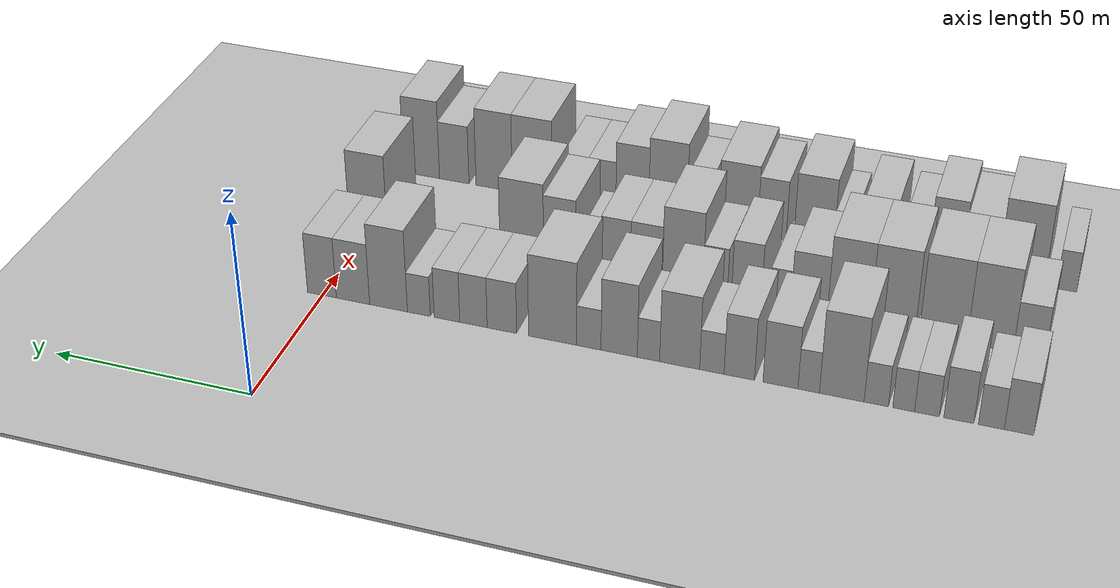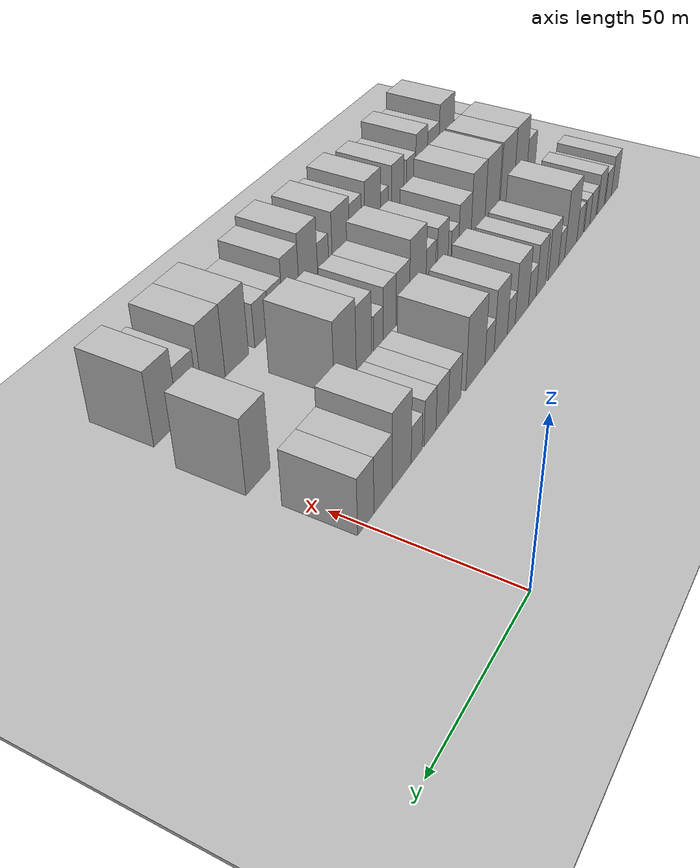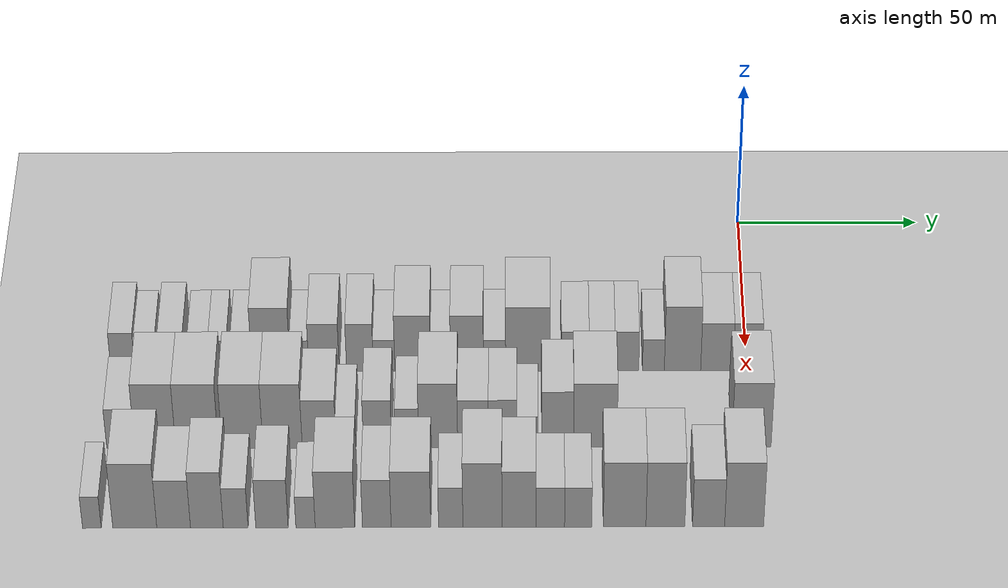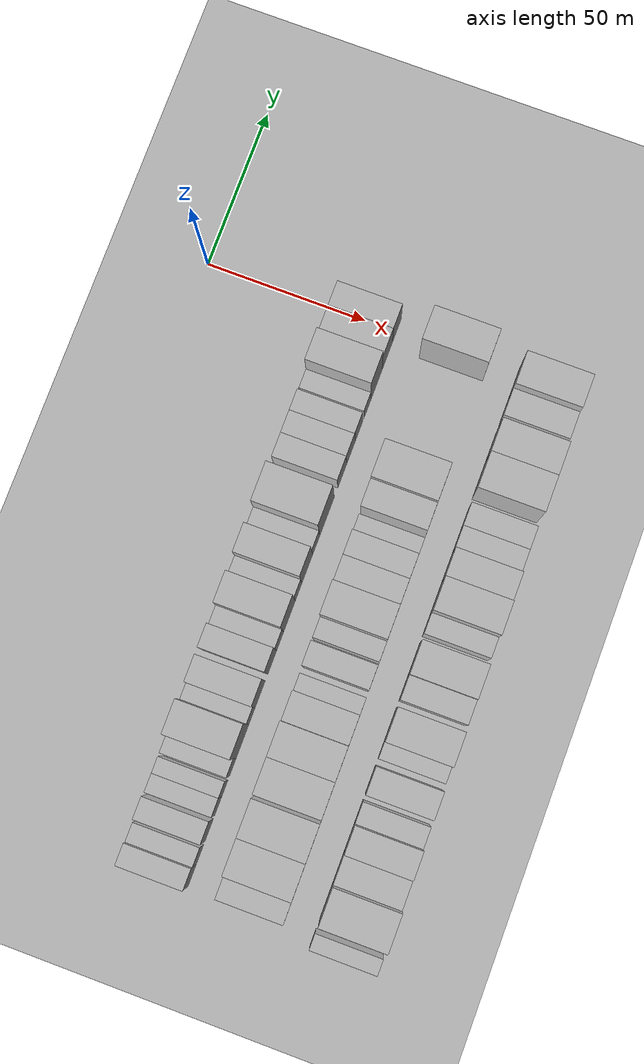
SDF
<sdf version="1.6">
 <world name="default">
  <include><name>ground_plane_1</name><uri>model://HANNAS_ground_plane</uri></include>
  <include>
   <name>ground_plane_2</name>
   <uri>model://HANNAS_ground_plane</uri>
   <pose>100 0 0  0 0 0</pose>
  </include>
  <model name="building_20">
   <static>1</static>
   <pose>50.0000 -168.3583 0 0.000000 0.000000 0.000000</pose>
   <link name="link">
    <pose>0 0 7.50 0 0 0</pose>
    <collision name="collision"><geometry><box><size>20.0000 6.5018 15.0000</size></box></geometry></collision>
    <visual name="visual">
     <cast_shadows>0</cast_shadows>
     <geometry><box><size>20.0000 6.5018 15.0000</size></box></geometry>
     <material>
      <script>
       <uri>model://HANNAS_wall/materials/scripts</uri>
       <uri>model://HANNAS_wall/materials/textures</uri>
       <name>vrc/HANNAS_wall</name>
      </script>
     </material>
    </visual>
   </link>
  </model>
  <model name="building_21">
   <static>1</static>
   <pose>50.0000 -162.2351 0 0.000000 0.000000 0.000000</pose>
   <link name="link">
    <pose>0 0 6.00 0 0 0</pose>
    <collision name="collision"><geometry><box><size>20.0000 5.7445 12.0000</size></box></geometry></collision>
    <visual name="visual">
     <cast_shadows>0</cast_shadows>
     <geometry><box><size>20.0000 5.7445 12.0000</size></box></geometry>
     <material>
      <script>
       <uri>model://HANNAS_wall/materials/scripts</uri>
       <uri>model://HANNAS_wall/materials/textures</uri>
       <name>vrc/HANNAS_wall</name>
      </script>
     </material>
    </visual>
   </link>
  </model>
  <model name="building_22">
   <static>1</static>
   <pose>50.0000 -154.9990 0 0.000000 0.000000 0.000000</pose>
   <link name="link">
    <pose>0 0 7.50 0 0 0</pose>
    <collision name="collision"><geometry><box><size>20.0000 6.7277 15.0000</size></box></geometry></collision>
    <visual name="visual">
     <cast_shadows>0</cast_shadows>
     <geometry><box><size>20.0000 6.7277 15.0000</size></box></geometry>
     <material>
      <script>
       <uri>model://HANNAS_wall/materials/scripts</uri>
       <uri>model://HANNAS_wall/materials/textures</uri>
       <name>vrc/HANNAS_wall</name>
      </script>
     </material>
    </visual>
   </link>
  </model>
  <model name="building_23">
   <static>1</static>
   <pose>50.0000 -147.8315 0 0.000000 0.000000 0.000000</pose>
   <link name="link">
    <pose>0 0 6.00 0 0 0</pose>
    <collision name="collision"><geometry><box><size>20.0000 5.6074 12.0000</size></box></geometry></collision>
    <visual name="visual">
     <cast_shadows>0</cast_shadows>
     <geometry><box><size>20.0000 5.6074 12.0000</size></box></geometry>
     <material>
      <script>
       <uri>model://HANNAS_wall/materials/scripts</uri>
       <uri>model://HANNAS_wall/materials/textures</uri>
       <name>vrc/HANNAS_wall</name>
      </script>
     </material>
    </visual>
   </link>
  </model>
  <model name="building_24">
   <static>1</static>
   <pose>50.0000 -142.5548 0 0.000000 0.000000 0.000000</pose>
   <link name="link">
    <pose>0 0 6.00 0 0 0</pose>
    <collision name="collision"><geometry><box><size>20.0000 4.9459 12.0000</size></box></geometry></collision>
    <visual name="visual">
     <cast_shadows>0</cast_shadows>
     <geometry><box><size>20.0000 4.9459 12.0000</size></box></geometry>
     <material>
      <script>
       <uri>model://HANNAS_wall/materials/scripts</uri>
       <uri>model://HANNAS_wall/materials/textures</uri>
       <name>vrc/HANNAS_wall</name>
      </script>
     </material>
    </visual>
   </link>
  </model>
  <model name="building_25">
   <static>1</static>
   <pose>50.0000 -136.3060 0 0.000000 0.000000 0.000000</pose>
   <link name="link">
    <pose>0 0 6.00 0 0 0</pose>
    <collision name="collision"><geometry><box><size>20.0000 5.5518 12.0000</size></box></geometry></collision>
    <visual name="visual">
     <cast_shadows>0</cast_shadows>
     <geometry><box><size>20.0000 5.5518 12.0000</size></box></geometry>
     <material>
      <script>
       <uri>model://HANNAS_wall/materials/scripts</uri>
       <uri>model://HANNAS_wall/materials/textures</uri>
       <name>vrc/HANNAS_wall</name>
      </script>
     </material>
    </visual>
   </link>
  </model>
  <model name="building_26">
   <static>1</static>
   <pose>50.0000 -128.3769 0 0.000000 0.000000 0.000000</pose>
   <link name="link">
    <pose>0 0 12.00 0 0 0</pose>
    <collision name="collision"><geometry><box><size>20.0000 10.3064 24.0000</size></box></geometry></collision>
    <visual name="visual">
     <cast_shadows>0</cast_shadows>
     <geometry><box><size>20.0000 10.3064 24.0000</size></box></geometry>
     <material>
      <script>
       <uri>model://HANNAS_wall/materials/scripts</uri>
       <uri>model://HANNAS_wall/materials/textures</uri>
       <name>vrc/HANNAS_wall</name>
      </script>
     </material>
    </visual>
   </link>
  </model>
  <model name="building_27">
   <static>1</static>
   <pose>50.0000 -120.7325 0 0.000000 0.000000 0.000000</pose>
   <link name="link">
    <pose>0 0 6.00 0 0 0</pose>
    <collision name="collision"><geometry><box><size>20.0000 4.9823 12.0000</size></box></geometry></collision>
    <visual name="visual">
     <cast_shadows>0</cast_shadows>
     <geometry><box><size>20.0000 4.9823 12.0000</size></box></geometry>
     <material>
      <script>
       <uri>model://HANNAS_wall/materials/scripts</uri>
       <uri>model://HANNAS_wall/materials/textures</uri>
       <name>vrc/HANNAS_wall</name>
      </script>
     </material>
    </visual>
   </link>
  </model>
  <model name="building_28">
   <static>1</static>
   <pose>50.0000 -114.1431 0 0.000000 0.000000 0.000000</pose>
   <link name="link">
    <pose>0 0 9.00 0 0 0</pose>
    <collision name="collision"><geometry><box><size>20.0000 8.1966 18.0000</size></box></geometry></collision>
    <visual name="visual">
     <cast_shadows>0</cast_shadows>
     <geometry><box><size>20.0000 8.1966 18.0000</size></box></geometry>
     <material>
      <script>
       <uri>model://HANNAS_wall/materials/scripts</uri>
       <uri>model://HANNAS_wall/materials/textures</uri>
       <name>vrc/HANNAS_wall</name>
      </script>
     </material>
    </visual>
   </link>
  </model>
  <model name="building_29">
   <static>1</static>
   <pose>50.0000 -104.4362 0 0.000000 0.000000 0.000000</pose>
   <link name="link">
    <pose>0 0 9.00 0 0 0</pose>
    <collision name="collision"><geometry><box><size>20.0000 7.2170 18.0000</size></box></geometry></collision>
    <visual name="visual">
     <cast_shadows>0</cast_shadows>
     <geometry><box><size>20.0000 7.2170 18.0000</size></box></geometry>
     <material>
      <script>
       <uri>model://HANNAS_wall/materials/scripts</uri>
       <uri>model://HANNAS_wall/materials/textures</uri>
       <name>vrc/HANNAS_wall</name>
      </script>
     </material>
    </visual>
   </link>
  </model>
  <model name="building_30">
   <static>1</static>
   <pose>50.0000 -97.9253 0 0.000000 0.000000 0.000000</pose>
   <link name="link">
    <pose>0 0 6.00 0 0 0</pose>
    <collision name="collision"><geometry><box><size>20.0000 5.8047 12.0000</size></box></geometry></collision>
    <visual name="visual">
     <cast_shadows>0</cast_shadows>
     <geometry><box><size>20.0000 5.8047 12.0000</size></box></geometry>
     <material>
      <script>
       <uri>model://HANNAS_wall/materials/scripts</uri>
       <uri>model://HANNAS_wall/materials/textures</uri>
       <name>vrc/HANNAS_wall</name>
      </script>
     </material>
    </visual>
   </link>
  </model>
  <model name="building_31">
   <static>1</static>
   <pose>50.0000 -90.2111 0 0.000000 0.000000 0.000000</pose>
   <link name="link">
    <pose>0 0 10.50 0 0 0</pose>
    <collision name="collision"><geometry><box><size>20.0000 9.6238 21.0000</size></box></geometry></collision>
    <visual name="visual">
     <cast_shadows>0</cast_shadows>
     <geometry><box><size>20.0000 9.6238 21.0000</size></box></geometry>
     <material>
      <script>
       <uri>model://HANNAS_wall/materials/scripts</uri>
       <uri>model://HANNAS_wall/materials/textures</uri>
       <name>vrc/HANNAS_wall</name>
      </script>
     </material>
    </visual>
   </link>
  </model>
  <model name="building_32">
   <static>1</static>
   <pose>50.0000 -82.6925 0 0.000000 0.000000 0.000000</pose>
   <link name="link">
    <pose>0 0 6.00 0 0 0</pose>
    <collision name="collision"><geometry><box><size>20.0000 5.4133 12.0000</size></box></geometry></collision>
    <visual name="visual">
     <cast_shadows>0</cast_shadows>
     <geometry><box><size>20.0000 5.4133 12.0000</size></box></geometry>
     <material>
      <script>
       <uri>model://HANNAS_wall/materials/scripts</uri>
       <uri>model://HANNAS_wall/materials/textures</uri>
       <name>vrc/HANNAS_wall</name>
      </script>
     </material>
    </visual>
   </link>
  </model>
  <model name="building_33">
   <static>1</static>
   <pose>50.0000 -75.5466 0 0.000000 0.000000 0.000000</pose>
   <link name="link">
    <pose>0 0 10.50 0 0 0</pose>
    <collision name="collision"><geometry><box><size>20.0000 8.8786 21.0000</size></box></geometry></collision>
    <visual name="visual">
     <cast_shadows>0</cast_shadows>
     <geometry><box><size>20.0000 8.8786 21.0000</size></box></geometry>
     <material>
      <script>
       <uri>model://HANNAS_wall/materials/scripts</uri>
       <uri>model://HANNAS_wall/materials/textures</uri>
       <name>vrc/HANNAS_wall</name>
      </script>
     </material>
    </visual>
   </link>
  </model>
  <model name="building_34">
   <static>1</static>
   <pose>50.0000 -68.1127 0 0.000000 0.000000 0.000000</pose>
   <link name="link">
    <pose>0 0 6.00 0 0 0</pose>
    <collision name="collision"><geometry><box><size>20.0000 5.9891 12.0000</size></box></geometry></collision>
    <visual name="visual">
     <cast_shadows>0</cast_shadows>
     <geometry><box><size>20.0000 5.9891 12.0000</size></box></geometry>
     <material>
      <script>
       <uri>model://HANNAS_wall/materials/scripts</uri>
       <uri>model://HANNAS_wall/materials/textures</uri>
       <name>vrc/HANNAS_wall</name>
      </script>
     </material>
    </visual>
   </link>
  </model>
  <model name="building_35">
   <static>1</static>
   <pose>50.0000 -59.1276 0 0.000000 0.000000 0.000000</pose>
   <link name="link">
    <pose>0 0 12.00 0 0 0</pose>
    <collision name="collision"><geometry><box><size>20.0000 11.9812 24.0000</size></box></geometry></collision>
    <visual name="visual">
     <cast_shadows>0</cast_shadows>
     <geometry><box><size>20.0000 11.9812 24.0000</size></box></geometry>
     <material>
      <script>
       <uri>model://HANNAS_wall/materials/scripts</uri>
       <uri>model://HANNAS_wall/materials/textures</uri>
       <name>vrc/HANNAS_wall</name>
      </script>
     </material>
    </visual>
   </link>
  </model>
  <model name="building_36">
   <static>1</static>
   <pose>50.0000 -46.4230 0 0.000000 0.000000 0.000000</pose>
   <link name="link">
    <pose>0 0 7.50 0 0 0</pose>
    <collision name="collision"><geometry><box><size>20.0000 7.4280 15.0000</size></box></geometry></collision>
    <visual name="visual">
     <cast_shadows>0</cast_shadows>
     <geometry><box><size>20.0000 7.4280 15.0000</size></box></geometry>
     <material>
      <script>
       <uri>model://HANNAS_wall/materials/scripts</uri>
       <uri>model://HANNAS_wall/materials/textures</uri>
       <name>vrc/HANNAS_wall</name>
      </script>
     </material>
    </visual>
   </link>
  </model>
  <model name="building_37">
   <static>1</static>
   <pose>50.0000 -39.2304 0 0.000000 0.000000 0.000000</pose>
   <link name="link">
    <pose>0 0 7.50 0 0 0</pose>
    <collision name="collision"><geometry><box><size>20.0000 6.9572 15.0000</size></box></geometry></collision>
    <visual name="visual">
     <cast_shadows>0</cast_shadows>
     <geometry><box><size>20.0000 6.9572 15.0000</size></box></geometry>
     <material>
      <script>
       <uri>model://HANNAS_wall/materials/scripts</uri>
       <uri>model://HANNAS_wall/materials/textures</uri>
       <name>vrc/HANNAS_wall</name>
      </script>
     </material>
    </visual>
   </link>
  </model>
  <model name="building_38">
   <static>1</static>
   <pose>50.0000 -32.4858 0 0.000000 0.000000 0.000000</pose>
   <link name="link">
    <pose>0 0 7.50 0 0 0</pose>
    <collision name="collision"><geometry><box><size>20.0000 6.5319 15.0000</size></box></geometry></collision>
    <visual name="visual">
     <cast_shadows>0</cast_shadows>
     <geometry><box><size>20.0000 6.5319 15.0000</size></box></geometry>
     <material>
      <script>
       <uri>model://HANNAS_wall/materials/scripts</uri>
       <uri>model://HANNAS_wall/materials/textures</uri>
       <name>vrc/HANNAS_wall</name>
      </script>
     </material>
    </visual>
   </link>
  </model>
  <model name="building_39">
   <static>1</static>
   <pose>50.0000 -25.2699 0 0.000000 0.000000 0.000000</pose>
   <link name="link">
    <pose>0 0 6.00 0 0 0</pose>
    <collision name="collision"><geometry><box><size>20.0000 5.8999 12.0000</size></box></geometry></collision>
    <visual name="visual">
     <cast_shadows>0</cast_shadows>
     <geometry><box><size>20.0000 5.8999 12.0000</size></box></geometry>
     <material>
      <script>
       <uri>model://HANNAS_wall/materials/scripts</uri>
       <uri>model://HANNAS_wall/materials/textures</uri>
       <name>vrc/HANNAS_wall</name>
      </script>
     </material>
    </visual>
   </link>
  </model>
  <model name="building_40">
   <static>1</static>
   <pose>50.0000 -17.4124 0 0.000000 0.000000 0.000000</pose>
   <link name="link">
    <pose>0 0 12.00 0 0 0</pose>
    <collision name="collision"><geometry><box><size>20.0000 9.8151 24.0000</size></box></geometry></collision>
    <visual name="visual">
     <cast_shadows>0</cast_shadows>
     <geometry><box><size>20.0000 9.8151 24.0000</size></box></geometry>
     <material>
      <script>
       <uri>model://HANNAS_wall/materials/scripts</uri>
       <uri>model://HANNAS_wall/materials/textures</uri>
       <name>vrc/HANNAS_wall</name>
      </script>
     </material>
    </visual>
   </link>
  </model>
  <model name="building_41">
   <static>1</static>
   <pose>50.0000 -8.1402 0 0.000000 0.000000 0.000000</pose>
   <link name="link">
    <pose>0 0 9.00 0 0 0</pose>
    <collision name="collision"><geometry><box><size>20.0000 8.7293 18.0000</size></box></geometry></collision>
    <visual name="visual">
     <cast_shadows>0</cast_shadows>
     <geometry><box><size>20.0000 8.7293 18.0000</size></box></geometry>
     <material>
      <script>
       <uri>model://HANNAS_wall/materials/scripts</uri>
       <uri>model://HANNAS_wall/materials/textures</uri>
       <name>vrc/HANNAS_wall</name>
      </script>
     </material>
    </visual>
   </link>
  </model>
  <model name="building_42">
   <static>1</static>
   <pose>50.0000 0.0508 0 0.000000 0.000000 0.000000</pose>
   <link name="link">
    <pose>0 0 9.00 0 0 0</pose>
    <collision name="collision"><geometry><box><size>20.0000 7.6527 18.0000</size></box></geometry></collision>
    <visual name="visual">
     <cast_shadows>0</cast_shadows>
     <geometry><box><size>20.0000 7.6527 18.0000</size></box></geometry>
     <material>
      <script>
       <uri>model://HANNAS_wall/materials/scripts</uri>
       <uri>model://HANNAS_wall/materials/textures</uri>
       <name>vrc/HANNAS_wall</name>
      </script>
     </material>
    </visual>
   </link>
  </model>
  <model name="building_104">
   <static>1</static>
   <pose>79.0000 -166.8739 0 0.000000 0.000000 0.000000</pose>
   <link name="link">
    <pose>0 0 7.50 0 0 0</pose>
    <collision name="collision"><geometry><box><size>20.0000 7.4451 15.0000</size></box></geometry></collision>
    <visual name="visual">
     <cast_shadows>0</cast_shadows>
     <geometry><box><size>20.0000 7.4451 15.0000</size></box></geometry>
     <material>
      <script>
       <uri>model://HANNAS_wall/materials/scripts</uri>
       <uri>model://HANNAS_wall/materials/textures</uri>
       <name>vrc/HANNAS_wall</name>
      </script>
     </material>
    </visual>
   </link>
  </model>
  <model name="building_105">
   <static>1</static>
   <pose>79.0000 -157.7465 0 0.000000 0.000000 0.000000</pose>
   <link name="link">
    <pose>0 0 12.00 0 0 0</pose>
    <collision name="collision"><geometry><box><size>20.0000 10.8097 24.0000</size></box></geometry></collision>
    <visual name="visual">
     <cast_shadows>0</cast_shadows>
     <geometry><box><size>20.0000 10.8097 24.0000</size></box></geometry>
     <material>
      <script>
       <uri>model://HANNAS_wall/materials/scripts</uri>
       <uri>model://HANNAS_wall/materials/textures</uri>
       <name>vrc/HANNAS_wall</name>
      </script>
     </material>
    </visual>
   </link>
  </model>
  <model name="building_106">
   <static>1</static>
   <pose>79.0000 -146.7037 0 0.000000 0.000000 0.000000</pose>
   <link name="link">
    <pose>0 0 12.00 0 0 0</pose>
    <collision name="collision"><geometry><box><size>20.0000 11.2759 24.0000</size></box></geometry></collision>
    <visual name="visual">
     <cast_shadows>0</cast_shadows>
     <geometry><box><size>20.0000 11.2759 24.0000</size></box></geometry>
     <material>
      <script>
       <uri>model://HANNAS_wall/materials/scripts</uri>
       <uri>model://HANNAS_wall/materials/textures</uri>
       <name>vrc/HANNAS_wall</name>
      </script>
     </material>
    </visual>
   </link>
  </model>
  <model name="building_107">
   <static>1</static>
   <pose>79.0000 -134.6678 0 0.000000 0.000000 0.000000</pose>
   <link name="link">
    <pose>0 0 12.00 0 0 0</pose>
    <collision name="collision"><geometry><box><size>20.0000 10.7960 24.0000</size></box></geometry></collision>
    <visual name="visual">
     <cast_shadows>0</cast_shadows>
     <geometry><box><size>20.0000 10.7960 24.0000</size></box></geometry>
     <material>
      <script>
       <uri>model://HANNAS_wall/materials/scripts</uri>
       <uri>model://HANNAS_wall/materials/textures</uri>
       <name>vrc/HANNAS_wall</name>
      </script>
     </material>
    </visual>
   </link>
  </model>
  <model name="building_108">
   <static>1</static>
   <pose>79.0000 -124.0740 0 0.000000 0.000000 0.000000</pose>
   <link name="link">
    <pose>0 0 12.00 0 0 0</pose>
    <collision name="collision"><geometry><box><size>20.0000 10.3915 24.0000</size></box></geometry></collision>
    <visual name="visual">
     <cast_shadows>0</cast_shadows>
     <geometry><box><size>20.0000 10.3915 24.0000</size></box></geometry>
     <material>
      <script>
       <uri>model://HANNAS_wall/materials/scripts</uri>
       <uri>model://HANNAS_wall/materials/textures</uri>
       <name>vrc/HANNAS_wall</name>
      </script>
     </material>
    </visual>
   </link>
  </model>
  <model name="building_109">
   <static>1</static>
   <pose>79.0000 -114.3984 0 0.000000 0.000000 0.000000</pose>
   <link name="link">
    <pose>0 0 9.00 0 0 0</pose>
    <collision name="collision"><geometry><box><size>20.0000 8.9598 18.0000</size></box></geometry></collision>
    <visual name="visual">
     <cast_shadows>0</cast_shadows>
     <geometry><box><size>20.0000 8.9598 18.0000</size></box></geometry>
     <material>
      <script>
       <uri>model://HANNAS_wall/materials/scripts</uri>
       <uri>model://HANNAS_wall/materials/textures</uri>
       <name>vrc/HANNAS_wall</name>
      </script>
     </material>
    </visual>
   </link>
  </model>
  <model name="building_110">
   <static>1</static>
   <pose>79.0000 -107.3000 0 0.000000 0.000000 0.000000</pose>
   <link name="link">
    <pose>0 0 6.00 0 0 0</pose>
    <collision name="collision"><geometry><box><size>20.0000 5.2370 12.0000</size></box></geometry></collision>
    <visual name="visual">
     <cast_shadows>0</cast_shadows>
     <geometry><box><size>20.0000 5.2370 12.0000</size></box></geometry>
     <material>
      <script>
       <uri>model://HANNAS_wall/materials/scripts</uri>
       <uri>model://HANNAS_wall/materials/textures</uri>
       <name>vrc/HANNAS_wall</name>
      </script>
     </material>
    </visual>
   </link>
  </model>
  <model name="building_111">
   <static>1</static>
   <pose>79.0000 -98.9500 0 0.000000 0.000000 0.000000</pose>
   <link name="link">
    <pose>0 0 9.00 0 0 0</pose>
    <collision name="collision"><geometry><box><size>20.0000 7.4631 18.0000</size></box></geometry></collision>
    <visual name="visual">
     <cast_shadows>0</cast_shadows>
     <geometry><box><size>20.0000 7.4631 18.0000</size></box></geometry>
     <material>
      <script>
       <uri>model://HANNAS_wall/materials/scripts</uri>
       <uri>model://HANNAS_wall/materials/textures</uri>
       <name>vrc/HANNAS_wall</name>
      </script>
     </material>
    </visual>
   </link>
  </model>
  <model name="building_112">
   <static>1</static>
   <pose>79.0000 -91.1295 0 0.000000 0.000000 0.000000</pose>
   <link name="link">
    <pose>0 0 7.50 0 0 0</pose>
    <collision name="collision"><geometry><box><size>20.0000 6.1778 15.0000</size></box></geometry></collision>
    <visual name="visual">
     <cast_shadows>0</cast_shadows>
     <geometry><box><size>20.0000 6.1778 15.0000</size></box></geometry>
     <material>
      <script>
       <uri>model://HANNAS_wall/materials/scripts</uri>
       <uri>model://HANNAS_wall/materials/textures</uri>
       <name>vrc/HANNAS_wall</name>
      </script>
     </material>
    </visual>
   </link>
  </model>
  <model name="building_113">
   <static>1</static>
   <pose>79.0000 -82.9024 0 0.000000 0.000000 0.000000</pose>
   <link name="link">
    <pose>0 0 12.00 0 0 0</pose>
    <collision name="collision"><geometry><box><size>20.0000 10.2764 24.0000</size></box></geometry></collision>
    <visual name="visual">
     <cast_shadows>0</cast_shadows>
     <geometry><box><size>20.0000 10.2764 24.0000</size></box></geometry>
     <material>
      <script>
       <uri>model://HANNAS_wall/materials/scripts</uri>
       <uri>model://HANNAS_wall/materials/textures</uri>
       <name>vrc/HANNAS_wall</name>
      </script>
     </material>
    </visual>
   </link>
  </model>
  <model name="building_114">
   <static>1</static>
   <pose>79.0000 -73.6767 0 0.000000 0.000000 0.000000</pose>
   <link name="link">
    <pose>0 0 9.00 0 0 0</pose>
    <collision name="collision"><geometry><box><size>20.0000 8.1750 18.0000</size></box></geometry></collision>
    <visual name="visual">
     <cast_shadows>0</cast_shadows>
     <geometry><box><size>20.0000 8.1750 18.0000</size></box></geometry>
     <material>
      <script>
       <uri>model://HANNAS_wall/materials/scripts</uri>
       <uri>model://HANNAS_wall/materials/textures</uri>
       <name>vrc/HANNAS_wall</name>
      </script>
     </material>
    </visual>
   </link>
  </model>
  <model name="building_115">
   <static>1</static>
   <pose>79.0000 -65.8203 0 0.000000 0.000000 0.000000</pose>
   <link name="link">
    <pose>0 0 9.00 0 0 0</pose>
    <collision name="collision"><geometry><box><size>20.0000 7.5378 18.0000</size></box></geometry></collision>
    <visual name="visual">
     <cast_shadows>0</cast_shadows>
     <geometry><box><size>20.0000 7.5378 18.0000</size></box></geometry>
     <material>
      <script>
       <uri>model://HANNAS_wall/materials/scripts</uri>
       <uri>model://HANNAS_wall/materials/textures</uri>
       <name>vrc/HANNAS_wall</name>
      </script>
     </material>
    </visual>
   </link>
  </model>
  <model name="building_116">
   <static>1</static>
   <pose>79.0000 -59.2965 0 0.000000 0.000000 0.000000</pose>
   <link name="link">
    <pose>0 0 6.00 0 0 0</pose>
    <collision name="collision"><geometry><box><size>20.0000 5.5098 12.0000</size></box></geometry></collision>
    <visual name="visual">
     <cast_shadows>0</cast_shadows>
     <geometry><box><size>20.0000 5.5098 12.0000</size></box></geometry>
     <material>
      <script>
       <uri>model://HANNAS_wall/materials/scripts</uri>
       <uri>model://HANNAS_wall/materials/textures</uri>
       <name>vrc/HANNAS_wall</name>
      </script>
     </material>
    </visual>
   </link>
  </model>
  <model name="building_117">
   <static>1</static>
   <pose>79.0000 -51.3378 0 0.000000 0.000000 0.000000</pose>
   <link name="link">
    <pose>0 0 10.50 0 0 0</pose>
    <collision name="collision"><geometry><box><size>20.0000 8.4077 21.0000</size></box></geometry></collision>
    <visual name="visual">
     <cast_shadows>0</cast_shadows>
     <geometry><box><size>20.0000 8.4077 21.0000</size></box></geometry>
     <material>
      <script>
       <uri>model://HANNAS_wall/materials/scripts</uri>
       <uri>model://HANNAS_wall/materials/textures</uri>
       <name>vrc/HANNAS_wall</name>
      </script>
     </material>
    </visual>
   </link>
  </model>
  <model name="building_118">
   <static>1</static>
   <pose>79.0000 -41.3850 0 0.000000 0.000000 0.000000</pose>
   <link name="link">
    <pose>0 0 12.00 0 0 0</pose>
    <collision name="collision"><geometry><box><size>20.0000 11.4979 24.0000</size></box></geometry></collision>
    <visual name="visual">
     <cast_shadows>0</cast_shadows>
     <geometry><box><size>20.0000 11.4979 24.0000</size></box></geometry>
     <material>
      <script>
       <uri>model://HANNAS_wall/materials/scripts</uri>
       <uri>model://HANNAS_wall/materials/textures</uri>
       <name>vrc/HANNAS_wall</name>
      </script>
     </material>
    </visual>
   </link>
  </model>
  <model name="building_119">
   <static>1</static>
   <pose>79.0000 -0.0532 0 0.000000 0.000000 0.000000</pose>
   <link name="link">
    <pose>0 0 12.00 0 0 0</pose>
    <collision name="collision"><geometry><box><size>20.0000 10.3885 24.0000</size></box></geometry></collision>
    <visual name="visual">
     <cast_shadows>0</cast_shadows>
     <geometry><box><size>20.0000 10.3885 24.0000</size></box></geometry>
     <material>
      <script>
       <uri>model://HANNAS_wall/materials/scripts</uri>
       <uri>model://HANNAS_wall/materials/textures</uri>
       <name>vrc/HANNAS_wall</name>
      </script>
     </material>
    </visual>
   </link>
  </model>
  <model name="building_175">
   <static>1</static>
   <pose>108.0000 -172.2790 0 0.000000 0.000000 0.000000</pose>
   <link name="link">
    <pose>0 0 6.00 0 0 0</pose>
    <collision name="collision"><geometry><box><size>20.0000 4.8412 12.0000</size></box></geometry></collision>
    <visual name="visual">
     <cast_shadows>0</cast_shadows>
     <geometry><box><size>20.0000 4.8412 12.0000</size></box></geometry>
     <material>
      <script>
       <uri>model://HANNAS_wall/materials/scripts</uri>
       <uri>model://HANNAS_wall/materials/textures</uri>
       <name>vrc/HANNAS_wall</name>
      </script>
     </material>
    </visual>
   </link>
  </model>
  <model name="building_176">
   <static>1</static>
   <pose>108.0000 -161.1571 0 0.000000 0.000000 0.000000</pose>
   <link name="link">
    <pose>0 0 12.00 0 0 0</pose>
    <collision name="collision"><geometry><box><size>20.0000 11.4026 24.0000</size></box></geometry></collision>
    <visual name="visual">
     <cast_shadows>0</cast_shadows>
     <geometry><box><size>20.0000 11.4026 24.0000</size></box></geometry>
     <material>
      <script>
       <uri>model://HANNAS_wall/materials/scripts</uri>
       <uri>model://HANNAS_wall/materials/textures</uri>
       <name>vrc/HANNAS_wall</name>
      </script>
     </material>
    </visual>
   </link>
  </model>
  <model name="building_177">
   <static>1</static>
   <pose>108.0000 -151.0871 0 0.000000 0.000000 0.000000</pose>
   <link name="link">
    <pose>0 0 9.00 0 0 0</pose>
    <collision name="collision"><geometry><box><size>20.0000 8.7373 18.0000</size></box></geometry></collision>
    <visual name="visual">
     <cast_shadows>0</cast_shadows>
     <geometry><box><size>20.0000 8.7373 18.0000</size></box></geometry>
     <material>
      <script>
       <uri>model://HANNAS_wall/materials/scripts</uri>
       <uri>model://HANNAS_wall/materials/textures</uri>
       <name>vrc/HANNAS_wall</name>
      </script>
     </material>
    </visual>
   </link>
  </model>
  <model name="building_178">
   <static>1</static>
   <pose>108.0000 -142.4758 0 0.000000 0.000000 0.000000</pose>
   <link name="link">
    <pose>0 0 10.50 0 0 0</pose>
    <collision name="collision"><geometry><box><size>20.0000 8.4852 21.0000</size></box></geometry></collision>
    <visual name="visual">
     <cast_shadows>0</cast_shadows>
     <geometry><box><size>20.0000 8.4852 21.0000</size></box></geometry>
     <material>
      <script>
       <uri>model://HANNAS_wall/materials/scripts</uri>
       <uri>model://HANNAS_wall/materials/textures</uri>
       <name>vrc/HANNAS_wall</name>
      </script>
     </material>
    </visual>
   </link>
  </model>
  <model name="building_179">
   <static>1</static>
   <pose>108.0000 -135.0154 0 0.000000 0.000000 0.000000</pose>
   <link name="link">
    <pose>0 0 7.50 0 0 0</pose>
    <collision name="collision"><geometry><box><size>20.0000 6.4356 15.0000</size></box></geometry></collision>
    <visual name="visual">
     <cast_shadows>0</cast_shadows>
     <geometry><box><size>20.0000 6.4356 15.0000</size></box></geometry>
     <material>
      <script>
       <uri>model://HANNAS_wall/materials/scripts</uri>
       <uri>model://HANNAS_wall/materials/textures</uri>
       <name>vrc/HANNAS_wall</name>
      </script>
     </material>
    </visual>
   </link>
  </model>
  <model name="building_180">
   <static>1</static>
   <pose>108.0000 -125.6050 0 0.000000 0.000000 0.000000</pose>
   <link name="link">
    <pose>0 0 9.00 0 0 0</pose>
    <collision name="collision"><geometry><box><size>20.0000 8.3851 18.0000</size></box></geometry></collision>
    <visual name="visual">
     <cast_shadows>0</cast_shadows>
     <geometry><box><size>20.0000 8.3851 18.0000</size></box></geometry>
     <material>
      <script>
       <uri>model://HANNAS_wall/materials/scripts</uri>
       <uri>model://HANNAS_wall/materials/textures</uri>
       <name>vrc/HANNAS_wall</name>
      </script>
     </material>
    </visual>
   </link>
  </model>
  <model name="building_181">
   <static>1</static>
   <pose>108.0000 -116.9038 0 0.000000 0.000000 0.000000</pose>
   <link name="link">
    <pose>0 0 6.00 0 0 0</pose>
    <collision name="collision"><geometry><box><size>20.0000 5.0173 12.0000</size></box></geometry></collision>
    <visual name="visual">
     <cast_shadows>0</cast_shadows>
     <geometry><box><size>20.0000 5.0173 12.0000</size></box></geometry>
     <material>
      <script>
       <uri>model://HANNAS_wall/materials/scripts</uri>
       <uri>model://HANNAS_wall/materials/textures</uri>
       <name>vrc/HANNAS_wall</name>
      </script>
     </material>
    </visual>
   </link>
  </model>
  <model name="building_182">
   <static>1</static>
   <pose>108.0000 -109.2731 0 0.000000 0.000000 0.000000</pose>
   <link name="link">
    <pose>0 0 10.50 0 0 0</pose>
    <collision name="collision"><geometry><box><size>20.0000 10.2441 21.0000</size></box></geometry></collision>
    <visual name="visual">
     <cast_shadows>0</cast_shadows>
     <geometry><box><size>20.0000 10.2441 21.0000</size></box></geometry>
     <material>
      <script>
       <uri>model://HANNAS_wall/materials/scripts</uri>
       <uri>model://HANNAS_wall/materials/textures</uri>
       <name>vrc/HANNAS_wall</name>
      </script>
     </material>
    </visual>
   </link>
  </model>
  <model name="building_183">
   <static>1</static>
   <pose>108.0000 -98.4318 0 0.000000 0.000000 0.000000</pose>
   <link name="link">
    <pose>0 0 9.00 0 0 0</pose>
    <collision name="collision"><geometry><box><size>20.0000 7.4384 18.0000</size></box></geometry></collision>
    <visual name="visual">
     <cast_shadows>0</cast_shadows>
     <geometry><box><size>20.0000 7.4384 18.0000</size></box></geometry>
     <material>
      <script>
       <uri>model://HANNAS_wall/materials/scripts</uri>
       <uri>model://HANNAS_wall/materials/textures</uri>
       <name>vrc/HANNAS_wall</name>
      </script>
     </material>
    </visual>
   </link>
  </model>
  <model name="building_184">
   <static>1</static>
   <pose>108.0000 -89.5695 0 0.000000 0.000000 0.000000</pose>
   <link name="link">
    <pose>0 0 10.50 0 0 0</pose>
    <collision name="collision"><geometry><box><size>20.0000 10.2862 21.0000</size></box></geometry></collision>
    <visual name="visual">
     <cast_shadows>0</cast_shadows>
     <geometry><box><size>20.0000 10.2862 21.0000</size></box></geometry>
     <material>
      <script>
       <uri>model://HANNAS_wall/materials/scripts</uri>
       <uri>model://HANNAS_wall/materials/textures</uri>
       <name>vrc/HANNAS_wall</name>
      </script>
     </material>
    </visual>
   </link>
  </model>
  <model name="building_185">
   <static>1</static>
   <pose>108.0000 -79.2640 0 0.000000 0.000000 0.000000</pose>
   <link name="link">
    <pose>0 0 7.50 0 0 0</pose>
    <collision name="collision"><geometry><box><size>20.0000 6.3248 15.0000</size></box></geometry></collision>
    <visual name="visual">
     <cast_shadows>0</cast_shadows>
     <geometry><box><size>20.0000 6.3248 15.0000</size></box></geometry>
     <material>
      <script>
       <uri>model://HANNAS_wall/materials/scripts</uri>
       <uri>model://HANNAS_wall/materials/textures</uri>
       <name>vrc/HANNAS_wall</name>
      </script>
     </material>
    </visual>
   </link>
  </model>
  <model name="building_186">
   <static>1</static>
   <pose>108.0000 -71.0236 0 0.000000 0.000000 0.000000</pose>
   <link name="link">
    <pose>0 0 12.00 0 0 0</pose>
    <collision name="collision"><geometry><box><size>20.0000 10.1561 24.0000</size></box></geometry></collision>
    <visual name="visual">
     <cast_shadows>0</cast_shadows>
     <geometry><box><size>20.0000 10.1561 24.0000</size></box></geometry>
     <material>
      <script>
       <uri>model://HANNAS_wall/materials/scripts</uri>
       <uri>model://HANNAS_wall/materials/textures</uri>
       <name>vrc/HANNAS_wall</name>
      </script>
     </material>
    </visual>
   </link>
  </model>
  <model name="building_187">
   <static>1</static>
   <pose>108.0000 -61.5212 0 0.000000 0.000000 0.000000</pose>
   <link name="link">
    <pose>0 0 10.50 0 0 0</pose>
    <collision name="collision"><geometry><box><size>20.0000 8.8487 21.0000</size></box></geometry></collision>
    <visual name="visual">
     <cast_shadows>0</cast_shadows>
     <geometry><box><size>20.0000 8.8487 21.0000</size></box></geometry>
     <material>
      <script>
       <uri>model://HANNAS_wall/materials/scripts</uri>
       <uri>model://HANNAS_wall/materials/textures</uri>
       <name>vrc/HANNAS_wall</name>
      </script>
     </material>
    </visual>
   </link>
  </model>
  <model name="building_188">
   <static>1</static>
   <pose>108.0000 -53.4282 0 0.000000 0.000000 0.000000</pose>
   <link name="link">
    <pose>0 0 7.50 0 0 0</pose>
    <collision name="collision"><geometry><box><size>20.0000 7.3373 15.0000</size></box></geometry></collision>
    <visual name="visual">
     <cast_shadows>0</cast_shadows>
     <geometry><box><size>20.0000 7.3373 15.0000</size></box></geometry>
     <material>
      <script>
       <uri>model://HANNAS_wall/materials/scripts</uri>
       <uri>model://HANNAS_wall/materials/textures</uri>
       <name>vrc/HANNAS_wall</name>
      </script>
     </material>
    </visual>
   </link>
  </model>
  <model name="building_189">
   <static>1</static>
   <pose>108.0000 -46.2338 0 0.000000 0.000000 0.000000</pose>
   <link name="link">
    <pose>0 0 7.50 0 0 0</pose>
    <collision name="collision"><geometry><box><size>20.0000 7.0515 15.0000</size></box></geometry></collision>
    <visual name="visual">
     <cast_shadows>0</cast_shadows>
     <geometry><box><size>20.0000 7.0515 15.0000</size></box></geometry>
     <material>
      <script>
       <uri>model://HANNAS_wall/materials/scripts</uri>
       <uri>model://HANNAS_wall/materials/textures</uri>
       <name>vrc/HANNAS_wall</name>
      </script>
     </material>
    </visual>
   </link>
  </model>
  <model name="building_190">
   <static>1</static>
   <pose>108.0000 -34.1874 0 0.000000 0.000000 0.000000</pose>
   <link name="link">
    <pose>0 0 12.00 0 0 0</pose>
    <collision name="collision"><geometry><box><size>20.0000 11.0414 24.0000</size></box></geometry></collision>
    <visual name="visual">
     <cast_shadows>0</cast_shadows>
     <geometry><box><size>20.0000 11.0414 24.0000</size></box></geometry>
     <material>
      <script>
       <uri>model://HANNAS_wall/materials/scripts</uri>
       <uri>model://HANNAS_wall/materials/textures</uri>
       <name>vrc/HANNAS_wall</name>
      </script>
     </material>
    </visual>
   </link>
  </model>
  <model name="building_191">
   <static>1</static>
   <pose>108.0000 -23.6221 0 0.000000 0.000000 0.000000</pose>
   <link name="link">
    <pose>0 0 12.00 0 0 0</pose>
    <collision name="collision"><geometry><box><size>20.0000 10.0892 24.0000</size></box></geometry></collision>
    <visual name="visual">
     <cast_shadows>0</cast_shadows>
     <geometry><box><size>20.0000 10.0892 24.0000</size></box></geometry>
     <material>
      <script>
       <uri>model://HANNAS_wall/materials/scripts</uri>
       <uri>model://HANNAS_wall/materials/textures</uri>
       <name>vrc/HANNAS_wall</name>
      </script>
     </material>
    </visual>
   </link>
  </model>
  <model name="building_192">
   <static>1</static>
   <pose>108.0000 -12.4212 0 0.000000 0.000000 0.000000</pose>
   <link name="link">
    <pose>0 0 9.00 0 0 0</pose>
    <collision name="collision"><geometry><box><size>20.0000 8.3126 18.0000</size></box></geometry></collision>
    <visual name="visual">
     <cast_shadows>0</cast_shadows>
     <geometry><box><size>20.0000 8.3126 18.0000</size></box></geometry>
     <material>
      <script>
       <uri>model://HANNAS_wall/materials/scripts</uri>
       <uri>model://HANNAS_wall/materials/textures</uri>
       <name>vrc/HANNAS_wall</name>
      </script>
     </material>
    </visual>
   </link>
  </model>
  <model name="building_193">
   <static>1</static>
   <pose>108.0000 -3.2050 0 0.000000 0.000000 0.000000</pose>
   <link name="link">
    <pose>0 0 12.00 0 0 0</pose>
    <collision name="collision"><geometry><box><size>20.0000 10.1197 24.0000</size></box></geometry></collision>
    <visual name="visual">
     <cast_shadows>0</cast_shadows>
     <geometry><box><size>20.0000 10.1197 24.0000</size></box></geometry>
     <material>
      <script>
       <uri>model://HANNAS_wall/materials/scripts</uri>
       <uri>model://HANNAS_wall/materials/textures</uri>
       <name>vrc/HANNAS_wall</name>
      </script>
     </material>
    </visual>
   </link>
  </model>
 </world>
</sdf>
